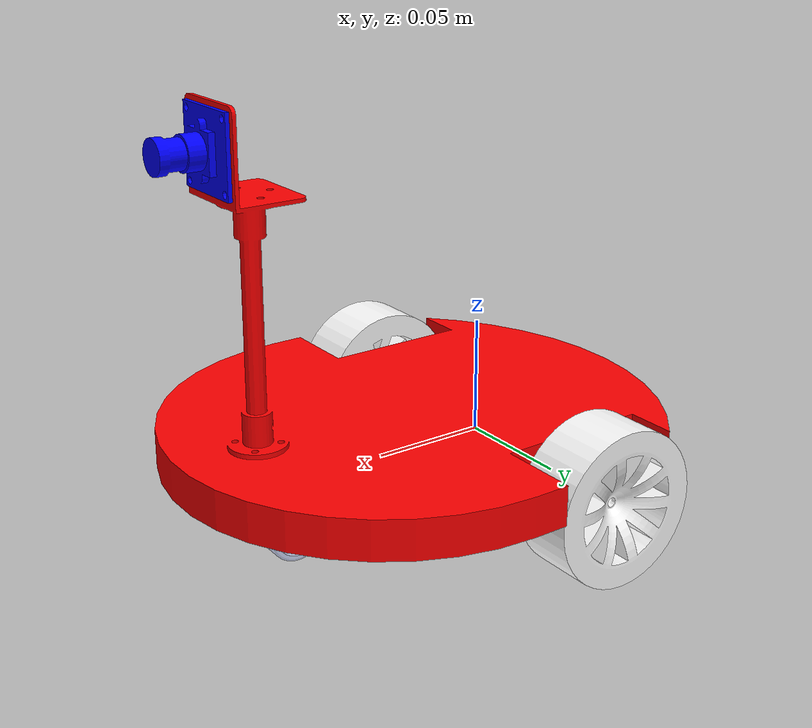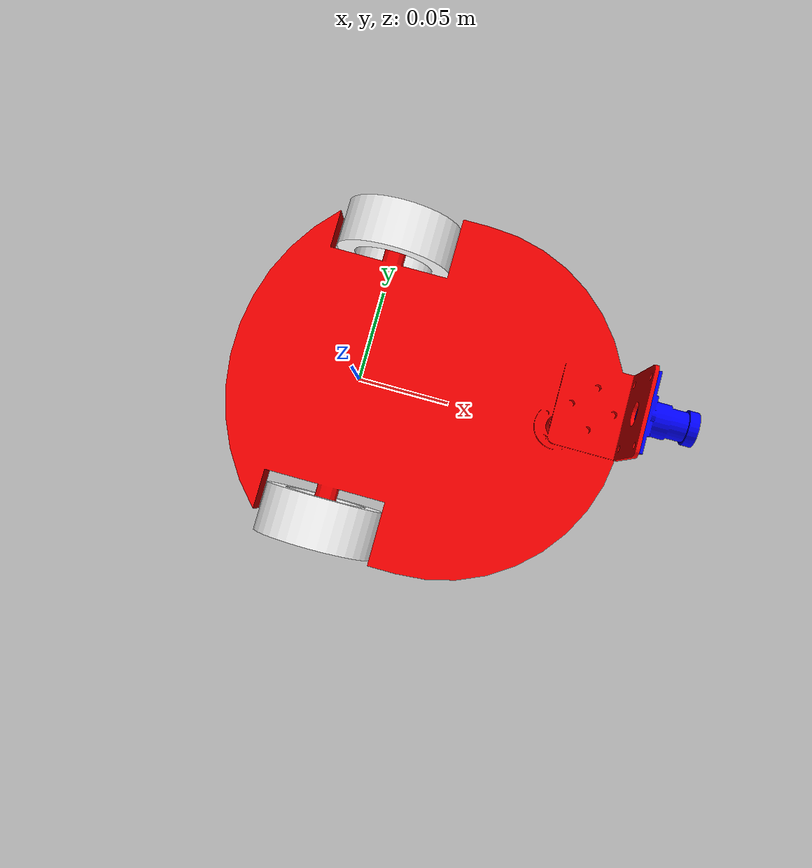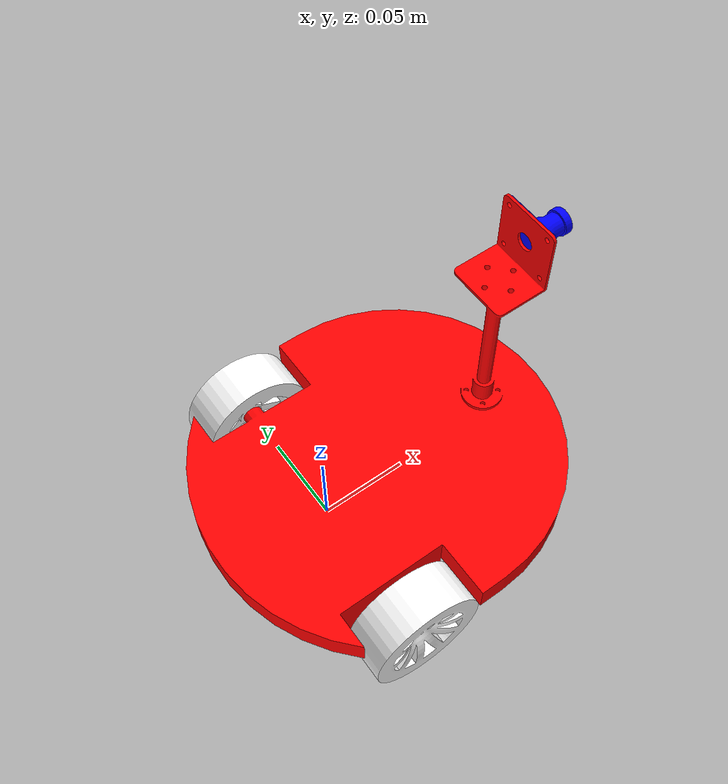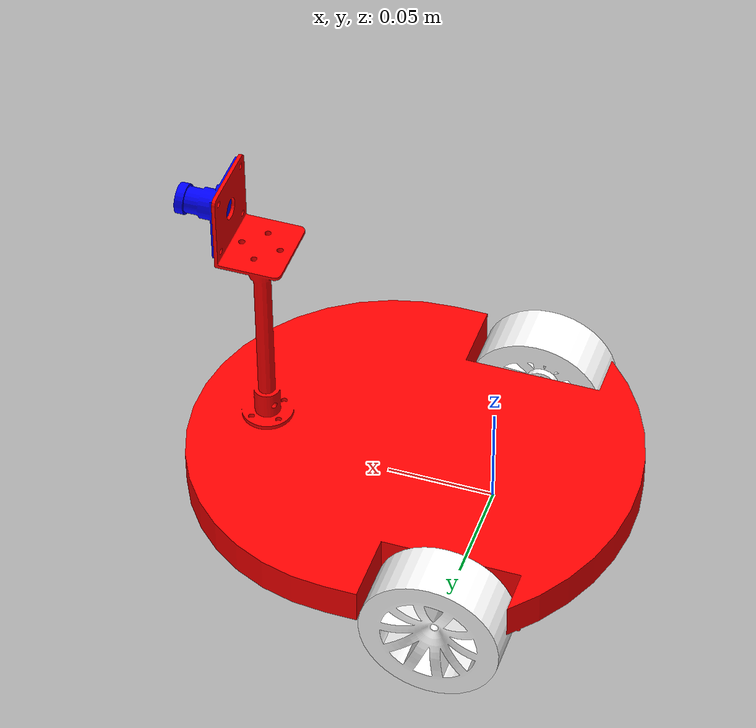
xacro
<?xml version="1.0" encoding="utf-8"?>
<robot
  name="mbot">
  <link
    name="base_link">
    <inertial>
      <origin
        xyz="0.031718 0.0010788 0.0093612"
        rpy="0 0 0" />
      <mass
        value="0.65742" />
      <inertia
        ixx="0.0012148"
        ixy="-1.669E-10"
        ixz="-8.961E-05"
        iyy="0.0017714"
        iyz="4.3457E-10"
        izz="0.0028629" />
    </inertial>
    <visual>
      <origin
        xyz="0 0 0"
        rpy="0 0 0" />
      <geometry>
        <mesh
          filename="package://mbot_description/meshes/base_link.STL" />
      </geometry>
      <material
        name="">
        <color
          rgba="1 0 0 1" />
      </material>
    </visual>
    <collision>
      <origin
        xyz="0 0 0"
        rpy="0 0 0" />
      <geometry>
        <mesh
          filename="package://mbot_description/meshes/base_link.STL" />
      </geometry>
    </collision>
  </link>
  <link
    name="left_wheel">
    <inertial>
      <origin
        xyz="5.9507E-10 0.00090446 1.4781E-10"
        rpy="0 0 0" />
      <mass
        value="0.055191" />
      <inertia
        ixx="2.1623E-05"
        ixy="-6.4631E-13"
        ixz="4.6E-13"
        iyy="3.7506E-05"
        iyz="-5.6463E-14"
        izz="2.1623E-05" />
    </inertial>
    <visual>
      <origin
        xyz="0 0 0"
        rpy="0 0 0" />
      <geometry>
        <mesh
          filename="package://mbot_description/meshes/left_wheel.STL" />
      </geometry>
      <material
        name="">
        <color
          rgba="1 1 1 1" />
      </material>
    </visual>
    <collision>
      <origin
        xyz="0 0 0"
        rpy="0 0 0" />
      <geometry>
        <mesh
          filename="package://mbot_description/meshes/left_wheel.STL" />
      </geometry>
    </collision>
  </link>
  <joint
    name="left_wheel_joint"
    type="continuous">
    <origin
      xyz="0 0.0817787986999904 0"
      rpy="0 0 0" />
    <parent
      link="base_link" />
    <child
      link="left_wheel" />
    <axis
      xyz="0 1 0" />
  </joint>
  <link
    name="right_wheel">
    <inertial>
      <origin
        xyz="-5.1502E-10 -0.00090446 -3.3273E-10"
        rpy="0 0 0" />
      <mass
        value="0.055191" />
      <inertia
        ixx="2.1623E-05"
        ixy="-4.8348E-13"
        ixz="4.3197E-13"
        iyy="3.7506E-05"
        iyz="-4.3261E-13"
        izz="2.1623E-05" />
    </inertial>
    <visual>
      <origin
        xyz="0 0 0"
        rpy="0 0 0" />
      <geometry>
        <mesh
          filename="package://mbot_description/meshes/right_wheel.STL" />
      </geometry>
      <material
        name="">
        <color
          rgba="1 1 1 1" />
      </material>
    </visual>
    <collision>
      <origin
        xyz="0 0 0"
        rpy="0 0 0" />
      <geometry>
        <mesh
          filename="package://mbot_description/meshes/right_wheel.STL" />
      </geometry>
    </collision>
  </link>
  <joint
    name="right_wheel_joint"
    type="continuous">
    <origin
      xyz="0 -0.0796212013000096 0"
      rpy="0 0 0" />
    <parent
      link="base_link" />
    <child
      link="right_wheel" />
    <axis
      xyz="0 -1 0" />
  </joint>
  <link
    name="caster">
    <inertial>
      <origin
        xyz="-0.00317173717020319 -3.26267206180726E-09 -0.00521478607045461"
        rpy="0 0 0" />
      <mass
        value="0.00355610174138765" />
      <inertia
        ixx="3.02924783100049E-07"
        ixy="-7.21343178456743E-14"
        ixz="-4.35847300443475E-08"
        iyy="3.00780336049954E-07"
        iyz="2.10490590568135E-14"
        izz="4.45421482341645E-07" />
    </inertial>
    <visual>
      <origin
        xyz="0 0 0"
        rpy="0 0 0" />
      <geometry>
        <mesh
          filename="package://mbot_description/meshes/caster.STL" />
      </geometry>
      <material
        name="">
        <color
          rgba="1 1 1 1" />
      </material>
    </visual>
    <collision>
      <origin
        xyz="0 0 0"
        rpy="0 0 0" />
      <geometry>
        <mesh
          filename="package://mbot_description/meshes/caster.STL" />
      </geometry>
    </collision>
  </link>
  <joint
    name="casters"
    type="continuous">
    <origin
      xyz="0.1085 0.00107879869999038 0.0018"
      rpy="0 0 0" />
    <parent
      link="base_link" />
    <child
      link="caster" />
    <axis
      xyz="0 0 1" />
  </joint>
  <link
    name="ball">
    <inertial>
      <origin
        xyz="4.85722573273506E-17 2.64068238256525E-06 3.46944695195361E-18"
        rpy="0 0 0" />
      <mass
        value="0.00357800810368399" />
      <inertia
        ixx="2.10467220616672E-07"
        ixy="-2.13210127870429E-22"
        ixz="1.59021164530962E-23"
        iyy="3.42235978633314E-07"
        iyz="-6.4851318376887E-24"
        izz="2.10467220616672E-07" />
    </inertial>
    <visual>
      <origin
        xyz="0 0 0"
        rpy="0 0 0" />
      <geometry>
        <mesh
          filename="package://mbot_description/meshes/ball.STL" />
      </geometry>
      <material
        name="">
        <color
          rgba="0.792156862745098 0.819607843137255 0.933333333333333 1" />
      </material>
    </visual>
    <collision>
      <origin
        xyz="0 0 0"
        rpy="0 0 0" />
      <geometry>
        <mesh
          filename="package://mbot_description/meshes/ball.STL" />
      </geometry>
    </collision>
  </link>
  <joint
    name="balls"
    type="continuous">
    <origin
      xyz="-0.0135 0 -0.0201000000000001"
      rpy="0 0 0" />
    <parent
      link="caster" />
    <child
      link="ball" />
    <axis
      xyz="0 -1 0" />
  </joint>
  <link
    name="shexiangtou">
    <inertial>
      <origin
        xyz="0.007417 -1.1743E-15 -1.1657E-15"
        rpy="0 0 0" />
      <mass
        value="0.0049386" />
      <inertia
        ixx="3.7138E-07"
        ixy="-2.3147E-21"
        ixz="9.212E-22"
        iyy="4.3413E-07"
        iyz="5.9739E-22"
        izz="4.2766E-07" />
    </inertial>
    <visual>
      <origin
        xyz="0 0 0"
        rpy="0 0 0" />
      <geometry>
        <mesh
          filename="package://mbot_description/meshes/shexiangtou.STL" />
      </geometry>
      <material
        name="">
        <color
          rgba="0 0 1 1" />
      </material>
    </visual>
    <collision>
      <origin
        xyz="0 0 0"
        rpy="0 0 0" />
      <geometry>
        <mesh
          filename="package://mbot_description/meshes/shexiangtou.STL" />
      </geometry>
    </collision>
  </link>
  <joint
    name="shexiang"
    type="fixed">
    <origin
      xyz="0.123529215768874 0.00107879869999066 0.1404"
      rpy="0 0 0" />
    <parent
      link="base_link" />
    <child
      link="shexiangtou" />
    <axis
      xyz="0 0 0" />
  </joint>

    <gazebo reference="shexiangtou">
        <material>Gazebo/Orange</material>
    </gazebo>

    <gazebo reference="shexiangtou">
        <sensor type="depth" name="camera">
            <always_on>true</always_on>
            <update_rate>20.0</update_rate>
            <camera>
                <horizontal_fov>1.047</horizontal_fov>
                <image>
                    <format>R8G8B8</format>
                    <width>640</width>
                    <height>480</height>
                </image>
                <clip>
                    <near>0.05</near>
                    <far>20.0</far>
                </clip>
            </camera>
            <plugin name="kinect_camera_controller" filename="libgazebo_ros_openni_kinect.so">
                <cameraName>camera</cameraName>
                <alwaysOn>true</alwaysOn>
                <updateRate>10</updateRate>
                <imageTopicName>rgb/image_raw</imageTopicName>
                <depthImageTopicName>depth/image_raw</depthImageTopicName>
                <pointCloudTopicName>depth/points</pointCloudTopicName>
                <cameraInfoTopicName>rgb/camera_info</cameraInfoTopicName>
                <depthImageCameraInfoTopicName>depth/camera_info</depthImageCameraInfoTopicName>
                <frameName>camera_frame_optical</frameName>
                <baseline>0.1</baseline>
                <distortion_k1>0.0</distortion_k1>
                <distortion_k2>0.0</distortion_k2>
                <distortion_k3>0.0</distortion_k3>
                <distortion_t1>0.0</distortion_t1>
                <distortion_t2>0.0</distortion_t2>
                <pointCloudCutoff>0.05</pointCloudCutoff>
            </plugin>
        </sensor>
    </gazebo>

    <gazebo reference="base_link">
        <material>Gazebo/Red</material>
    </gazebo>

    <gazebo reference="right_wheel">
        <material>Gazebo/Black</material>
    </gazebo>

    <gazebo reference="left_wheel">
        <material>Gazebo/Black</material>
    </gazebo>

    <gazebo>
        <plugin filename="libgazebo_ros_planar_move.so" name="robot_move">
            <commandTopic>cmd_vel</commandTopic>
            <odometryTopic>odom</odometryTopic>
            <odometryFrame>odom</odometryFrame>
            <odometryRate>50</odometryRate>
            <robotBaseFrame>base_link</robotBaseFrame>
        </plugin>
    </gazebo>

</robot>
